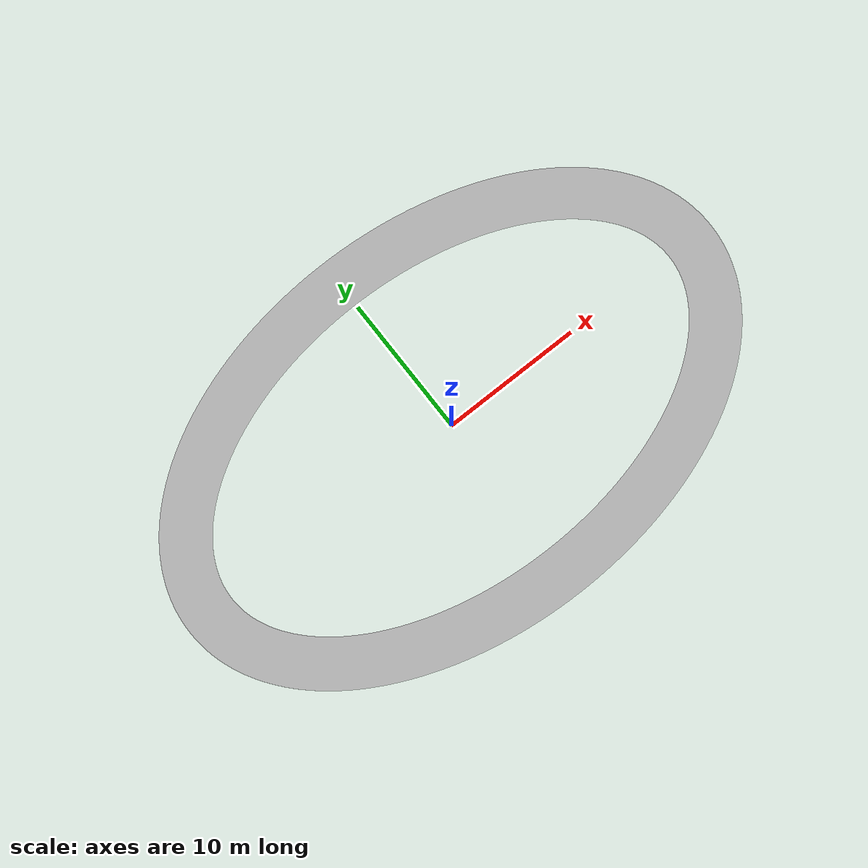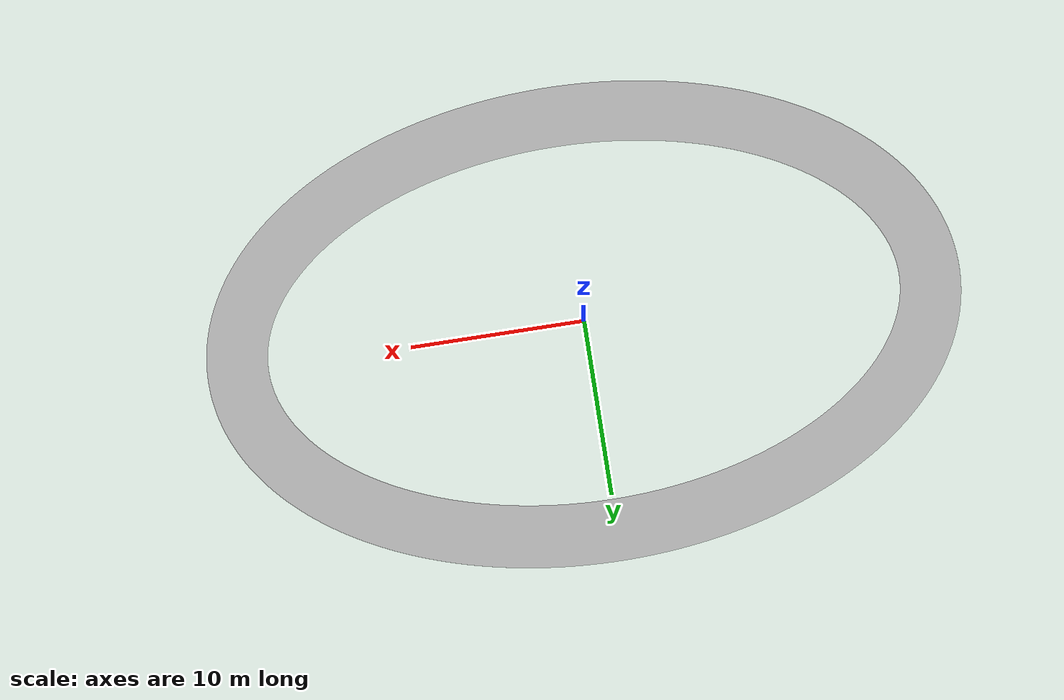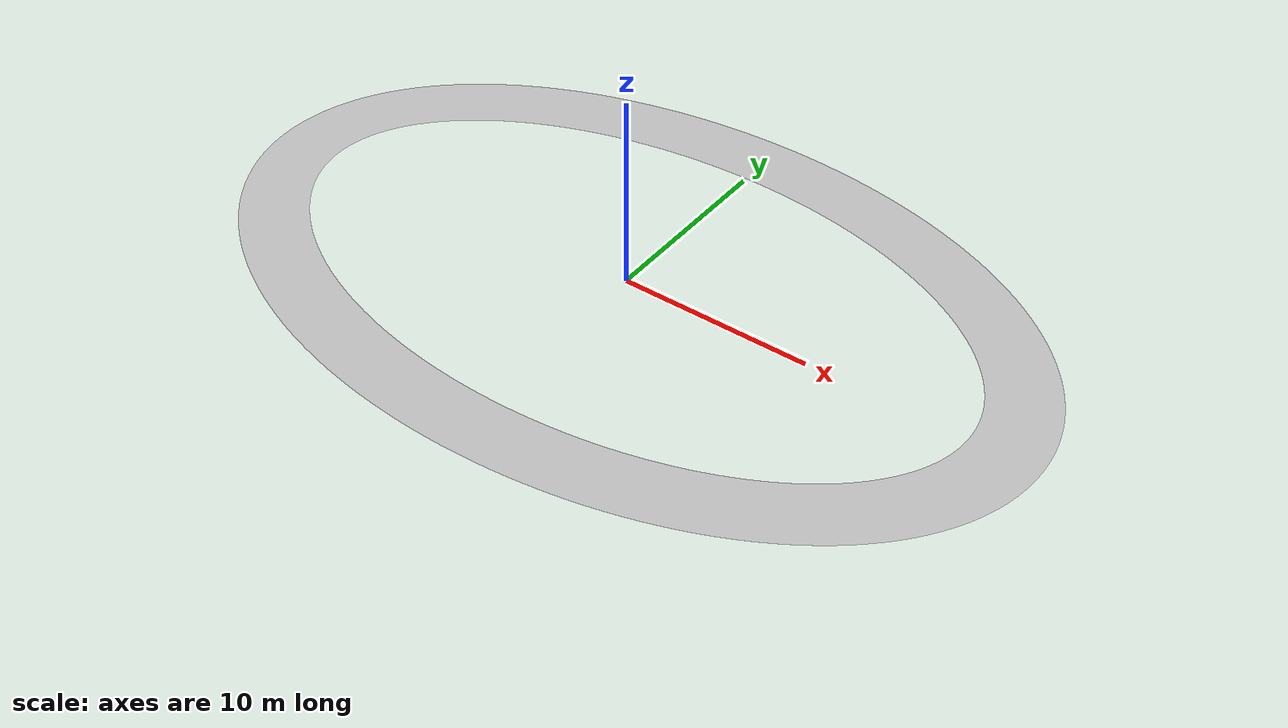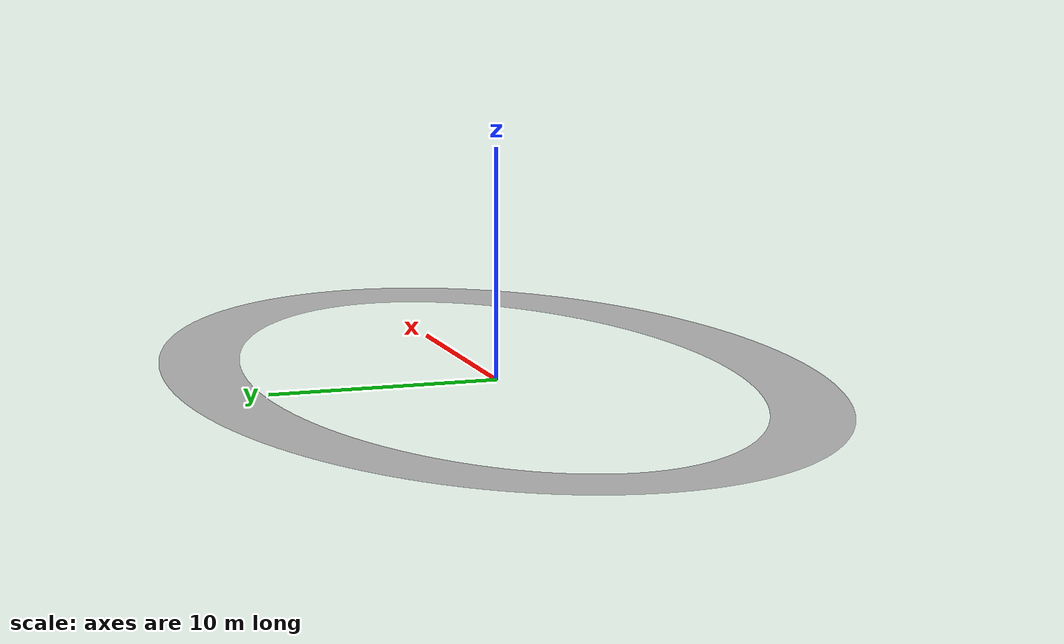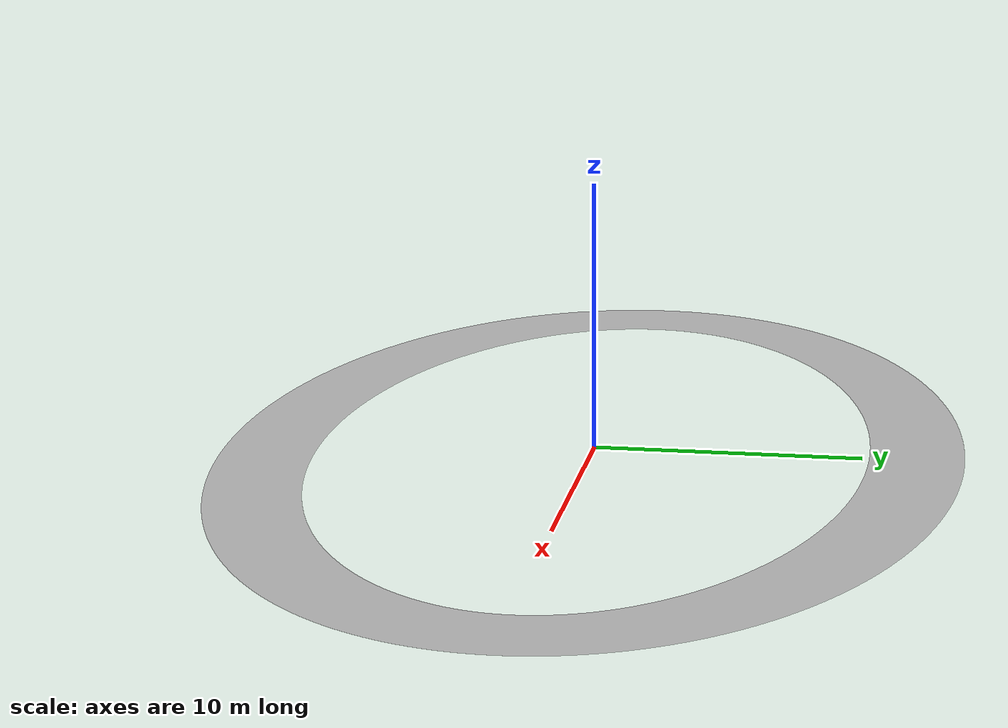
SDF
<sdf version="1.10">
  <model name="oval_track">
    <static>true</static>

    <link name="link">
      <visual name="visual">
        <geometry>
          <mesh>
            <uri>model://oval_track/meshes/oval_track.dae</uri>
          </mesh>
        </geometry>
      </visual>

      <collision name="collision">
        <geometry>
          <mesh>
            <uri>model://oval_track/meshes/oval_track.dae</uri>
          </mesh>
        </geometry>
      </collision>
    </link>
  </model>
</sdf>
